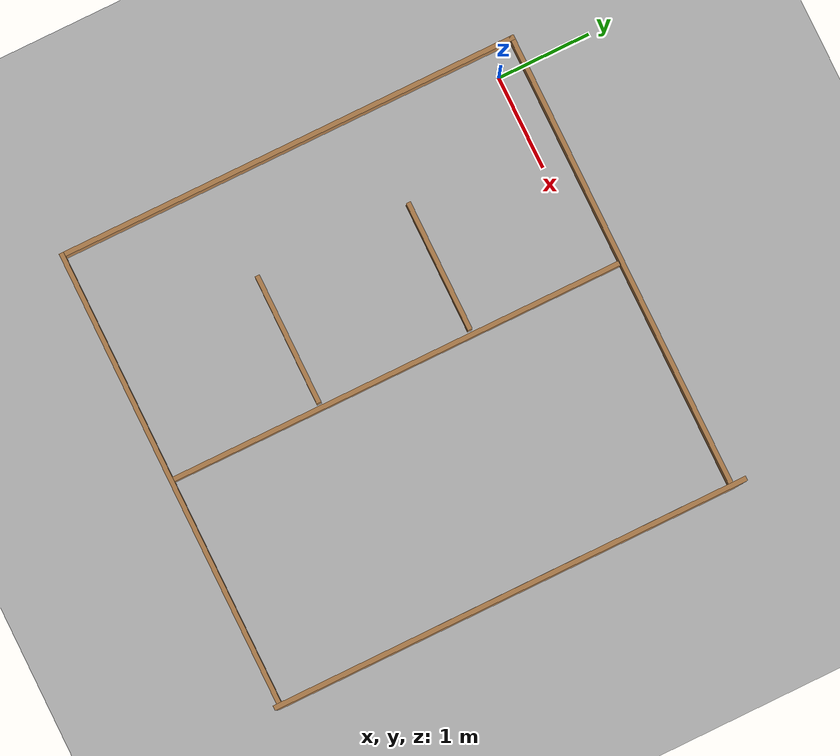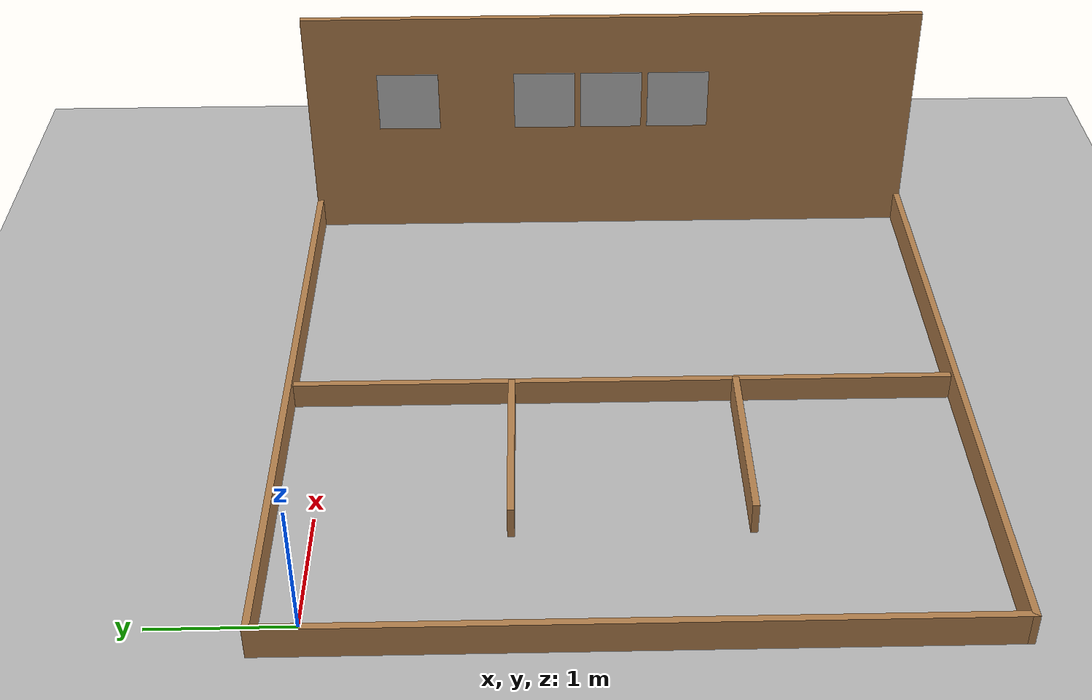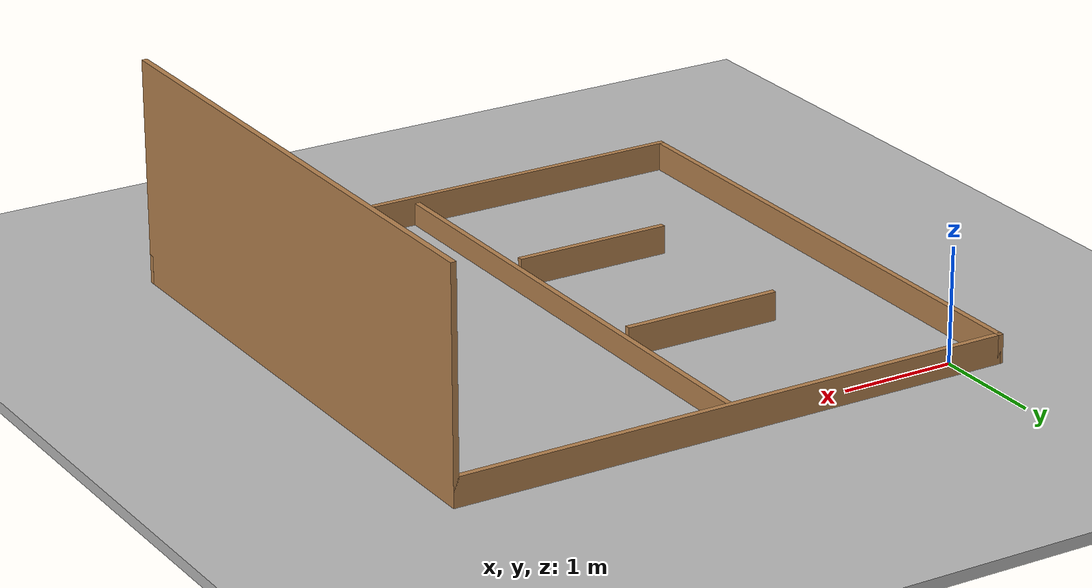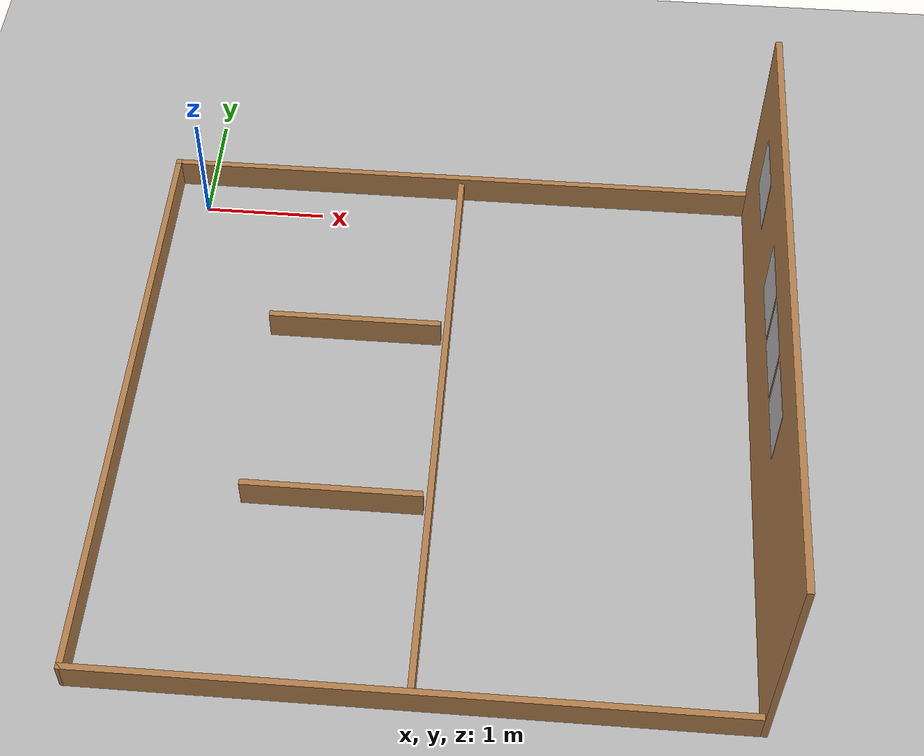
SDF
<sdf version="1.6">
 <world name="default">
  <physics name="default_physics" default="0" type="ode">
   <max_step_size>0.004</max_step_size>
   <real_time_factor>1</real_time_factor>
   <real_time_update_rate>250</real_time_update_rate>
   <ode>
    <solver>
     <type>quick</type>
     <iters>10</iters>
     <sor>1.3</sor>
     <use_dynamic_moi_rescaling>0</use_dynamic_moi_rescaling>
    </solver>
    <constraints>
     <cfm>0</cfm>
     <erp>0.2</erp>
     <contact_max_correcting_vel>100</contact_max_correcting_vel>
     <contact_surface_layer>0.001</contact_surface_layer>
    </constraints>
   </ode>
  </physics>
  <light name="sun" type="directional">
   <pose>0 0 10 0 -0 0</pose>
   <diffuse>0.8 0.8 0.8 1</diffuse>
   <specular>0.2 0.2 0.2 1</specular>
   <attenuation>
    <range>1000</range>
    <constant>0.9</constant>
    <linear>0.01</linear>
    <quadratic>0.001</quadratic>
   </attenuation>
   <direction>-0.5 0.1 -0.9</direction>
  </light>
  <model name="ground_plane">
   <static>1</static>
   <link name="link">
    <collision name="collision">
     <geometry><plane><normal>0 0 1</normal><size>100 100</size></plane></geometry>
     <surface><friction><ode><mu>100</mu><mu2>50</mu2></ode></friction></surface>
    </collision>
    <visual name="visual">
     <cast_shadows>0</cast_shadows>
     <geometry><plane><normal>0 0 1</normal><size>100 100</size></plane></geometry>
     <material>
      <script><uri>file://media/materials/scripts/gazebo.material</uri><name>Gazebo/Grey</name></script>
     </material>
    </visual>
   </link>
  </model>
  <gravity>0 0 -9.8</gravity>
  <magnetic_field>6e-06 2.3e-05 -4.2e-05</magnetic_field>
  <atmosphere type="adiabatic"/>
  <scene>
   <ambient>0.4 0.4 0.4 1</ambient>
   <background>0.7 0.7 0.7 1</background>
   <shadows>1</shadows>
   <sky><clouds><speed>12</speed></clouds></sky>
  </scene>
  <spherical_coordinates>
   <surface_model>EARTH_WGS84</surface_model>
   <latitude_deg>0</latitude_deg>
   <longitude_deg>0</longitude_deg>
   <elevation>0</elevation>
   <heading_deg>0</heading_deg>
  </spherical_coordinates>
  <model name="5x5">
   <pose>2.2 -2.19999 0 0 -0 3.14159</pose>
   <link name="Wall_0">
    <collision name="Wall_0_Collision">
     <geometry><box><size>5 0.05 2</size></box></geometry>
     <pose>0 0 1 0 -0 0</pose>
    </collision>
    <visual name="Wall_0_Visual">
     <pose>0 0 1 0 -0 0</pose>
     <geometry><box><size>5 0.05 2</size></box></geometry>
     <material>
      <script><uri>file://media/materials/scripts/gazebo.material</uri><name>Gazebo/Wood</name></script>
      <ambient>1 1 1 1</ambient>
     </material>
     <meta><layer>0</layer></meta>
    </visual>
    <pose>-2.475 0 0 0 -0 -1.5708</pose>
   </link>
   <link name="Wall_5">
    <collision name="Wall_5_Collision">
     <geometry><box><size>5 0.05 0.3</size></box></geometry>
     <pose>0 0 0.15 0 -0 0</pose>
    </collision>
    <visual name="Wall_5_Visual">
     <pose>0 0 0.15 0 -0 0</pose>
     <geometry><box><size>5 0.05 0.3</size></box></geometry>
     <material>
      <script><uri>file://media/materials/scripts/gazebo.material</uri><name>Gazebo/Wood</name></script>
      <ambient>1 1 1 1</ambient>
     </material>
     <meta><layer>0</layer></meta>
    </visual>
    <pose>0 -2.475 0 0 -0 0</pose>
   </link>
   <link name="Wall_7">
    <collision name="Wall_7_Collision">
     <geometry><box><size>5 0.05 0.3</size></box></geometry>
     <pose>0 0 0.15 0 -0 0</pose>
    </collision>
    <visual name="Wall_7_Visual">
     <pose>0 0 0.15 0 -0 0</pose>
     <geometry><box><size>5 0.05 0.3</size></box></geometry>
     <material>
      <script><uri>file://media/materials/scripts/gazebo.material</uri><name>Gazebo/Wood</name></script>
      <ambient>1 1 1 1</ambient>
     </material>
     <meta><layer>0</layer></meta>
    </visual>
    <pose>2.475 0 0 0 -0 1.5708</pose>
   </link>
   <link name="Wall_9">
    <collision name="Wall_9_Collision">
     <geometry><box><size>5 0.05 0.3</size></box></geometry>
     <pose>0 0 0.15 0 -0 0</pose>
    </collision>
    <visual name="Wall_9_Visual">
     <pose>0 0 0.15 0 -0 0</pose>
     <geometry><box><size>5 0.05 0.3</size></box></geometry>
     <material>
      <script><uri>file://media/materials/scripts/gazebo.material</uri><name>Gazebo/Wood</name></script>
      <ambient>1 1 1 1</ambient>
     </material>
     <meta><layer>0</layer></meta>
    </visual>
    <pose>0 2.475 0 0 -0 0</pose>
   </link>
   <static>1</static>
  </model>
  <model name="QR0">
   <link name="link_0">
    <pose>0 -0 0 0 -1.57 -3.14159</pose>
    <visual name="visual">
     <geometry><box><size>0.5 0.5 0.01</size></box></geometry>
     <material>
      <script>
       <uri>model://QR0/materials/scripts</uri>
       <uri>model://QR0/materials/textures</uri>
       <name>vrc/QR0</name>
      </script>
     </material>
    </visual>
    <collision name="collision"><geometry><box><size>0.5 0.5 0.1</size></box></geometry></collision>
   </link>
   <static>1</static>
   <pose>4.65 -0.53 1.25 0 -0 0</pose>
  </model>
  <model name="QR1">
   <link name="link_0">
    <pose>0 -0 0 0 -1.57 -3.14159</pose>
    <visual name="visual">
     <geometry><box><size>0.5 0.5 0.01</size></box></geometry>
     <material>
      <script>
       <uri>model://QR1/materials/scripts</uri>
       <uri>model://QR1/materials/textures</uri>
       <name>vrc/QR1</name>
      </script>
     </material>
    </visual>
    <collision name="collision"><geometry><box><size>0.5 0.5 0.1</size></box></geometry></collision>
   </link>
   <static>1</static>
   <pose>4.65 -1.65 1.25 0 -0 0</pose>
  </model>
  <model name="QR2">
   <link name="link_0">
    <pose>0 -0 0 0 -1.57 -3.14159</pose>
    <visual name="visual">
     <geometry><box><size>0.5 0.5 0.01</size></box></geometry>
     <material>
      <script>
       <uri>model://QR2/materials/scripts</uri>
       <uri>model://QR2/materials/textures</uri>
       <name>vrc/QR2</name>
      </script>
     </material>
    </visual>
    <collision name="collision"><geometry><box><size>0.5 0.5 0.1</size></box></geometry></collision>
   </link>
   <static>1</static>
   <pose>4.65 -2.2 1.25 0 -0 0</pose>
  </model>
  <model name="QR3">
   <link name="link_0">
    <pose>0 -0 0 0 -1.57 -3.14159</pose>
    <visual name="visual">
     <geometry><box><size>0.5 0.5 0.01</size></box></geometry>
     <material>
      <script>
       <uri>model://QR3/materials/scripts</uri>
       <uri>model://QR3/materials/textures</uri>
       <name>vrc/QR3</name>
      </script>
     </material>
    </visual>
    <collision name="collision"><geometry><box><size>0.5 0.5 0.1</size></box></geometry></collision>
   </link>
   <static>1</static>
   <pose>4.65 -2.75 1.25 0 -0 0</pose>
  </model>
  <model name="lawn_plane">
   <static>1</static>
   <link name="link">
    <collision name="collision"><geometry><box><size>20 20 0.1</size></box></geometry></collision>
    <visual name="visual">
     <cast_shadows>0</cast_shadows>
     <geometry><box><size>20 20 0.1</size></box></geometry>
     <material>
      <script>
       <uri>model://lawn_plane/materials/scripts</uri>
       <uri>model://lawn_plane/materials/textures</uri>
       <name>vrc/lawn</name>
      </script>
     </material>
    </visual>
   </link>
   <pose>-0.221772 0.042426 0 0 -0 0</pose>
  </model>
  <model name="wall_cus">
   <pose>1.45 -1.37 0 0 -0 1.57</pose>
   <link name="Wall_11">
    <collision name="Wall_11_Collision">
     <geometry><box><size>1.4 0.05 0.3</size></box></geometry>
     <pose>0 0 0.15 0 -0 0</pose>
    </collision>
    <visual name="Wall_11_Visual">
     <pose>0 0 0.15 0 -0 0</pose>
     <geometry><box><size>1.4 0.05 0.3</size></box></geometry>
     <material>
      <script><uri>file://media/materials/scripts/gazebo.material</uri><name>Gazebo/Wood</name></script>
      <ambient>1 1 1 1</ambient>
     </material>
     <meta><layer>0</layer></meta>
    </visual>
    <pose>0 0 0 0 -0 -1.5708</pose>
   </link>
   <static>1</static>
  </model>
  <model name="wall_cus_clone">
   <pose>1.45 -3.03 0 0 -0 1.57</pose>
   <link name="Wall_11">
    <collision name="Wall_11_Collision">
     <geometry><box><size>1.4 0.05 0.3</size></box></geometry>
     <pose>0 0 0.15 0 -0 0</pose>
    </collision>
    <visual name="Wall_11_Visual">
     <pose>0 0 0.15 0 -0 0</pose>
     <geometry><box><size>1.4 0.05 0.3</size></box></geometry>
     <material>
      <script><uri>file://media/materials/scripts/gazebo.material</uri><name>Gazebo/Wood</name></script>
      <ambient>1 1 1 1</ambient>
     </material>
     <meta><layer>0</layer></meta>
    </visual>
    <pose>0 0 0 0 -0 -1.5708</pose>
   </link>
   <static>1</static>
  </model>
  <model name="geban">
   <pose>2.2 -2.2 0 0 -0 0</pose>
   <link name="Wall_2">
    <collision name="Wall_2_Collision">
     <geometry><box><size>4.9 0.05 0.25</size></box></geometry>
     <pose>0 0 0.125 0 -0 0</pose>
    </collision>
    <visual name="Wall_2_Visual">
     <pose>0 0 0.125 0 -0 0</pose>
     <geometry><box><size>4.9 0.05 0.25</size></box></geometry>
     <material>
      <script><uri>file://media/materials/scripts/gazebo.material</uri><name>Gazebo/Wood</name></script>
      <ambient>1 1 1 1</ambient>
     </material>
     <meta><layer>0</layer></meta>
    </visual>
    <pose>0 0 0 0 -0 -1.5708</pose>
   </link>
   <static>1</static>
  </model>
 </world>
</sdf>
